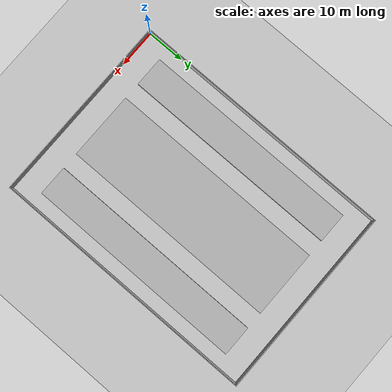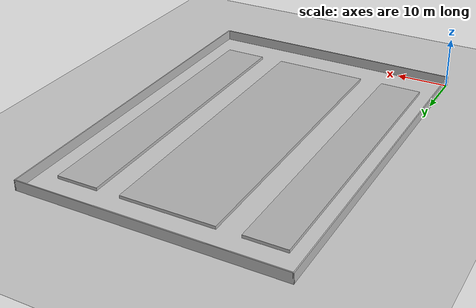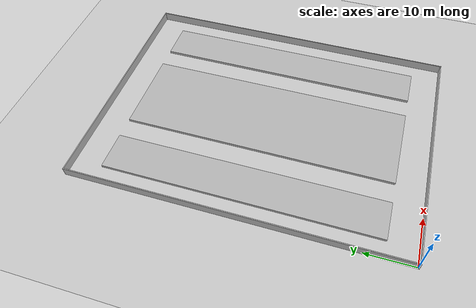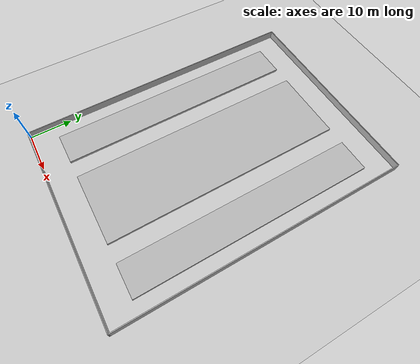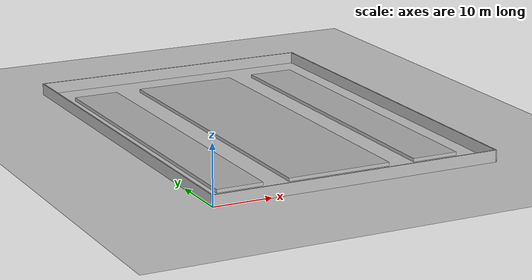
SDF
<?xml version="1.0" ?>
<sdf version="1.6">
  <world name="tb3_factory_50x70">
    <!-- Basic lighting -->
    <include>
      <uri>model://sun</uri>
    </include>

    <!-- Ground plane -->
    <include>
      <uri>model://ground_plane</uri>
    </include>

    <!-- ====== Boundary walls: 50m (X) x 70m (Y) ====== -->
    <!-- Thickness: 0.2m, Height: 2.0m -->
    <model name="wall_bottom">
      <static>true</static>
      <pose>25 -0.100 1.000 0 0 0</pose>
      <link name="link">
        <collision name="collision">
          <geometry><box><size>50.400 0.200 2.000</size></box></geometry>
        </collision>
        <visual name="visual">
          <geometry><box><size>50.400 0.200 2.000</size></box></geometry>
        </visual>
      </link>
    </model>

    <model name="wall_top">
      <static>true</static>
      <pose>25 70.100 1.000 0 0 0</pose>
      <link name="link">
        <collision name="collision">
          <geometry><box><size>50.400 0.200 2.000</size></box></geometry>
        </collision>
        <visual name="visual">
          <geometry><box><size>50.400 0.200 2.000</size></box></geometry>
        </visual>
      </link>
    </model>

    <model name="wall_left">
      <static>true</static>
      <pose>-0.100 35 1.000 0 0 0</pose>
      <link name="link">
        <collision name="collision">
          <geometry><box><size>0.200 70.400 2.000</size></box></geometry>
        </collision>
        <visual name="visual">
          <geometry><box><size>0.200 70.400 2.000</size></box></geometry>
        </visual>
      </link>
    </model>

    <model name="wall_right">
      <static>true</static>
      <pose>50.100 35 1.000 0 0 0</pose>
      <link name="link">
        <collision name="collision">
          <geometry><box><size>0.200 70.400 2.000</size></box></geometry>
        </collision>
        <visual name="visual">
          <geometry><box><size>0.200 70.400 2.000</size></box></geometry>
        </visual>
      </link>
    </model>

    <!-- ====== Obstacles (3 long blocks) ====== -->
    <!-- Obstacle 1: X 2.5..12.5, Y 5..65 -->
    <model name="obs_left_10x60">
      <static>true</static>
      <pose>7.5 35 0.000 0 0 0</pose>
      <link name="link">
        <collision name="collision">
          <geometry><box><size>8 58 1.000</size></box></geometry>
        </collision>
        <visual name="visual">
          <geometry><box><size>8 58 1.000</size></box></geometry>
        </visual>
      </link>
    </model>

    <!-- Obstacle 2: X 15..35, Y 5..65 -->
    <model name="obs_mid_20x60">
      <static>true</static>
      <pose>25 35 0.000 0 0 0</pose>
      <link name="link">
        <collision name="collision">
          <geometry><box><size>18 58 1.000</size></box></geometry>
        </collision>
        <visual name="visual">
          <geometry><box><size>18 58 1.000</size></box></geometry>
        </visual>
      </link>
    </model>

    <!-- Obstacle 3: X 37.5..47.5, Y 5..65 -->
    <model name="obs_right_10x60">
      <static>true</static>
      <pose>42.5 35 0.000 0 0 0</pose>
      <link name="link">
        <collision name="collision">
          <geometry><box><size>8 58 1.000</size></box></geometry>
        </collision>
        <visual name="visual">
          <geometry><box><size>8 58 1.000</size></box></geometry>
        </visual>
      </link>
    </model>

  </world>
</sdf>
